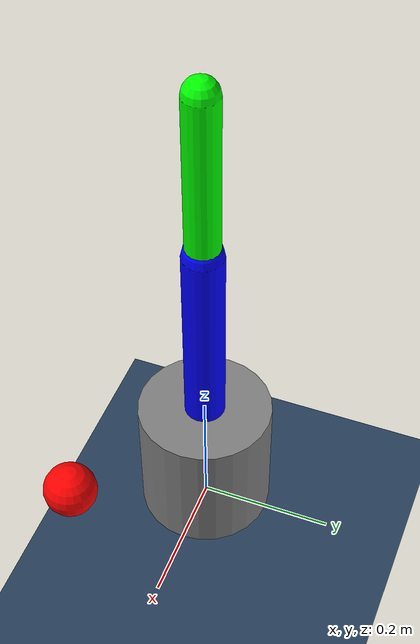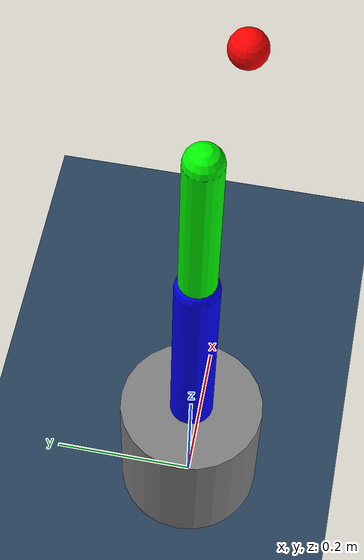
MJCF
<mujoco model="planar_manipulator">
    <compiler coordinate="local" inertiafromgeom="true"/>
    <option timestep="0.002" gravity="0 0 -9.81"/>

    <asset>
        <texture name="grid" type="2d" builtin="checker" rgb1=".1 .2 .3" rgb2=".2 .3 .4" width="512" height="512"/>
        <material name="grid_mat" texture="grid" texrepeat="1 1"/>
    </asset>

    <worldbody>
        <geom name="floor" type="plane" size="0 0 .25" material="grid_mat"/>
        <light directional="false" diffuse=".8 .8 .8" pos="0 0 4" dir="0 0 -1"/>

        <!-- Target Object to Reach -->
        <body name="target" pos="0.4 0 0.5">
            <geom name="target_geom" type="sphere" size="0.03" rgba="1 0 0 1" mocap="true"/>
        </body>

        <!-- Robot Base -->
        <body name="base" pos="0 0 0.1">
            <geom name="base_geom" type="cylinder" size="0.1 0.1" rgba="0.5 0.5 0.5 1"/>

            <!-- Link 1 -->
            <body name="link1" pos="0 0 0.1">
                <joint name="joint1" type="hinge" axis="0 1 0" range="-180 180"/>
                <geom name="link1_geom" type="capsule" fromto="0 0 0 0 0 0.3" size="0.03" rgba="0 0 1 1"/>

                <!-- Link 2 -->
                <body name="link2" pos="0 0 0.3">
                    <joint name="joint2" type="hinge" axis="0 1 0" range="-150 150"/>
                    <geom name="link2_geom" type="capsule" fromto="0 0 0 0 0 0.25" size="0.025" rgba="0 1 0 1"/>

                    <!-- End Effector Tip -->
                    <body name="ee" pos="0 0 0.25">
                        <site name="ee_site" size="0.01" rgba="1 1 0 1"/>
                    </body>
                </body>
            </body>
        </body>
    </worldbody>

    <actuator>
        <motor name="motor1" joint="joint1" gear="50.0" ctrlrange="-1 1"/>
        <motor name="motor2" joint="joint2" gear="25.0" ctrlrange="-1 1"/>
    </actuator>
</mujoco>
